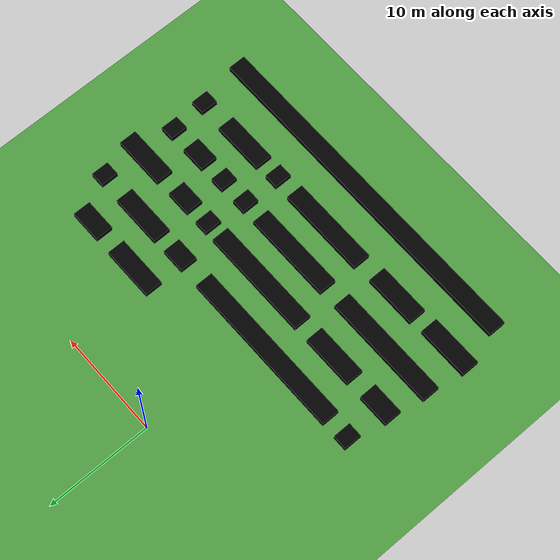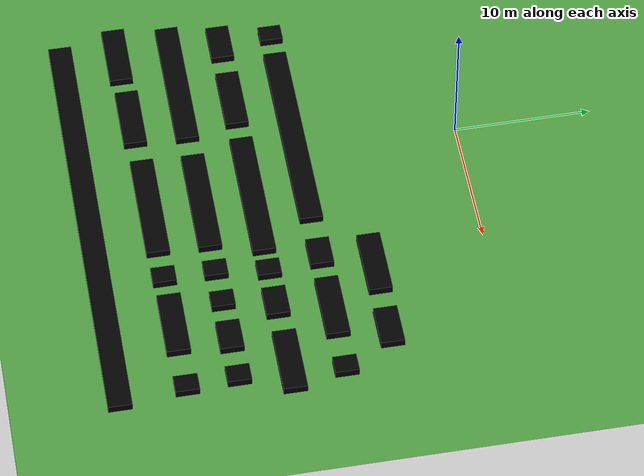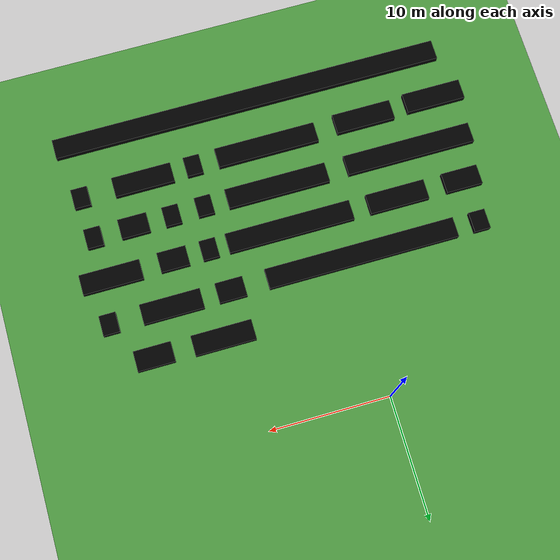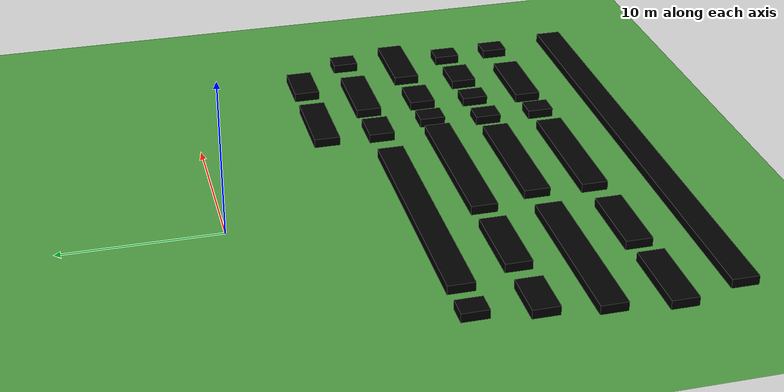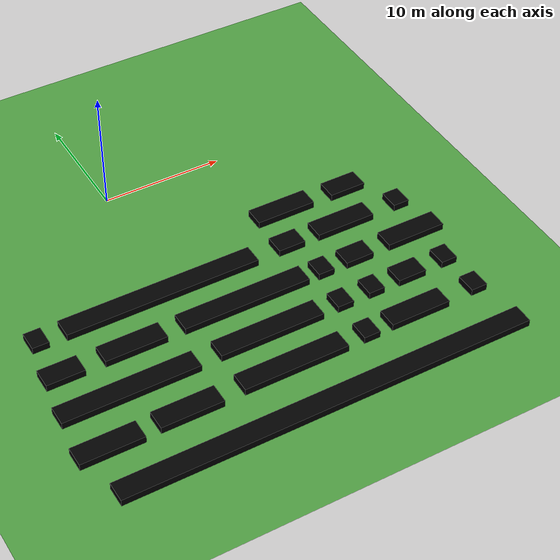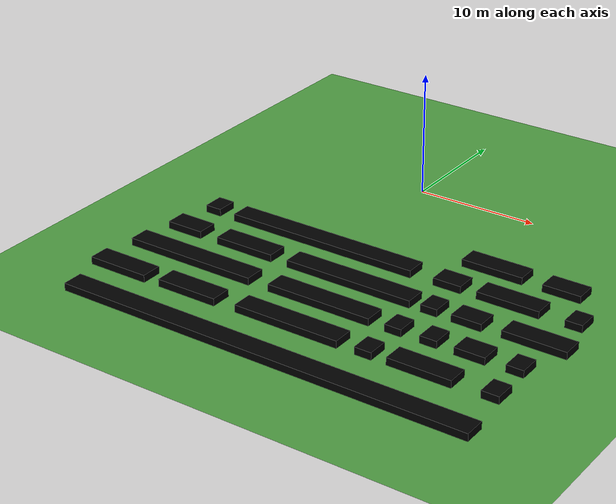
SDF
<sdf version="1.6">
 <world name="default">
  <model name="ground_plane">
   <static>1</static>
   <link name="link">
    <collision name="collision">
     <geometry><plane><normal>0 0 1</normal><size>120 120</size></plane></geometry>
     <surface><friction><ode><mu>100</mu><mu2>50</mu2></ode></friction></surface>
    </collision>
    <visual name="visual">
     <cast_shadows>0</cast_shadows>
     <geometry><plane><normal>0 0 1</normal><size>120 120</size></plane></geometry>
     <material>
      <script><uri>file://media/materials/scripts/gazebo.material</uri><name>Gazebo/Grass</name></script>
     </material>
    </visual>
   </link>
  </model>
  <model name="crop_01_8_clone">
   <link name="crop_01_0::link_0">
    <inertial>
     <mass>10.9148</mass>
     <inertia><ixx>13.7036</ixx><ixy>0</ixy><ixz>0</ixz><iyy>702.087</iyy><iyz>0</iyz><izz>715.772</izz></inertia>
    </inertial>
    <visual name="visual">
     <geometry><box><size>10.6183 1.68705 1</size></box></geometry>
     <material>
      <ambient>0 1 0 1</ambient>
      <diffuse>0 0 0 1</diffuse>
      <specular>0.1 0.1 0.1 1</specular>
      <emissive>0 0 0 0</emissive>
     </material>
    </visual>
    <collision name="collision">
     <geometry><box><size>10.6183 1.68705 1</size></box></geometry>
     <surface>
      <friction>
       <ode><mu>1</mu><mu2>1</mu2><fdir1>0 0 0</fdir1><slip1>0</slip1><slip2>0</slip2></ode>
       <torsional>
        <coefficient>1</coefficient>
        <patch_radius>0</patch_radius>
        <surface_radius>0</surface_radius>
        <use_patch_radius>1</use_patch_radius>
        <ode><slip>0</slip></ode>
       </torsional>
      </friction>
      <bounce><restitution_coefficient>0</restitution_coefficient><threshold>1e+06</threshold></bounce>
      <contact>
       <collide_without_contact>0</collide_without_contact>
       <collide_without_contact_bitmask>1</collide_without_contact_bitmask>
       <collide_bitmask>1</collide_bitmask>
       <ode>
        <soft_cfm>0</soft_cfm>
        <soft_erp>0.2</soft_erp>
        <kp>1e+13</kp>
        <kd>1</kd>
        <max_vel>0.01</max_vel>
        <min_depth>0</min_depth>
       </ode>
       <bullet>
        <split_impulse>1</split_impulse>
        <split_impulse_penetration_threshold>-0.01</split_impulse_penetration_threshold>
        <soft_cfm>0</soft_cfm>
        <soft_erp>0.2</soft_erp>
        <kp>1e+13</kp>
        <kd>1</kd>
       </bullet>
      </contact>
     </surface>
    </collision>
   </link>
   <static>1</static>
   <pose>3.79308 -15.5752 0.050638 0 -0 0</pose>
  </model>
  <model name="crop_01_8_clone_0_clone_0_clone_1_clone_clone_clone_clone_0_clone_1">
   <link name="crop_01_0::link_0">
    <inertial>
     <mass>10.9148</mass>
     <inertia><ixx>13.7036</ixx><ixy>0</ixy><ixz>0</ixz><iyy>702.087</iyy><iyz>0</iyz><izz>715.772</izz></inertia>
    </inertial>
    <visual name="visual">
     <geometry><box><size>8.63139 1.68705 1</size></box></geometry>
     <material>
      <ambient>0 1 0 1</ambient>
      <diffuse>0 0 0 1</diffuse>
      <specular>0.1 0.1 0.1 1</specular>
      <emissive>0 0 0 0</emissive>
     </material>
    </visual>
    <collision name="collision">
     <geometry><box><size>8.63139 1.68705 1</size></box></geometry>
     <surface>
      <friction>
       <ode><mu>1</mu><mu2>1</mu2><fdir1>0 0 0</fdir1><slip1>0</slip1><slip2>0</slip2></ode>
       <torsional>
        <coefficient>1</coefficient>
        <patch_radius>0</patch_radius>
        <surface_radius>0</surface_radius>
        <use_patch_radius>1</use_patch_radius>
        <ode><slip>0</slip></ode>
       </torsional>
      </friction>
      <bounce><restitution_coefficient>0</restitution_coefficient><threshold>1e+06</threshold></bounce>
      <contact>
       <collide_without_contact>0</collide_without_contact>
       <collide_without_contact_bitmask>1</collide_without_contact_bitmask>
       <collide_bitmask>1</collide_bitmask>
       <ode>
        <soft_cfm>0</soft_cfm>
        <soft_erp>0.2</soft_erp>
        <kp>1e+13</kp>
        <kd>1</kd>
        <max_vel>0.01</max_vel>
        <min_depth>0</min_depth>
       </ode>
       <bullet>
        <split_impulse>1</split_impulse>
        <split_impulse_penetration_threshold>-0.01</split_impulse_penetration_threshold>
        <soft_cfm>0</soft_cfm>
        <soft_erp>0.2</soft_erp>
        <kp>1e+13</kp>
        <kd>1</kd>
       </bullet>
      </contact>
     </surface>
    </collision>
   </link>
   <static>1</static>
   <pose>3.80036 -19.2787 0.050638 0 -0 0</pose>
  </model>
  <model name="crop_01_8_clone_0_clone_0_clone_1_clone_clone_clone_clone_clone_0_clone">
   <link name="crop_01_0::link_0">
    <inertial>
     <mass>10.9148</mass>
     <inertia><ixx>13.7036</ixx><ixy>0</ixy><ixz>0</ixz><iyy>702.087</iyy><iyz>0</iyz><izz>715.772</izz></inertia>
    </inertial>
    <visual name="visual">
     <geometry><box><size>3.0801 1.68705 1</size></box></geometry>
     <material>
      <ambient>0 1 0 1</ambient>
      <diffuse>0 0 0 1</diffuse>
      <specular>0.1 0.1 0.1 1</specular>
      <emissive>0 0 0 0</emissive>
     </material>
    </visual>
    <collision name="collision">
     <geometry><box><size>3.0801 1.68705 1</size></box></geometry>
     <surface>
      <friction>
       <ode><mu>1</mu><mu2>1</mu2><fdir1>0 0 0</fdir1><slip1>0</slip1><slip2>0</slip2></ode>
       <torsional>
        <coefficient>1</coefficient>
        <patch_radius>0</patch_radius>
        <surface_radius>0</surface_radius>
        <use_patch_radius>1</use_patch_radius>
        <ode><slip>0</slip></ode>
       </torsional>
      </friction>
      <bounce><restitution_coefficient>0</restitution_coefficient><threshold>1e+06</threshold></bounce>
      <contact>
       <collide_without_contact>0</collide_without_contact>
       <collide_without_contact_bitmask>1</collide_without_contact_bitmask>
       <collide_bitmask>1</collide_bitmask>
       <ode>
        <soft_cfm>0</soft_cfm>
        <soft_erp>0.2</soft_erp>
        <kp>1e+13</kp>
        <kd>1</kd>
        <max_vel>0.01</max_vel>
        <min_depth>0</min_depth>
       </ode>
       <bullet>
        <split_impulse>1</split_impulse>
        <split_impulse_penetration_threshold>-0.01</split_impulse_penetration_threshold>
        <soft_cfm>0</soft_cfm>
        <soft_erp>0.2</soft_erp>
        <kp>1e+13</kp>
        <kd>1</kd>
       </bullet>
      </contact>
     </surface>
    </collision>
   </link>
   <static>1</static>
   <pose>17.1699 -8.15216 0.050638 0 -0 0</pose>
  </model>
  <model name="crop_01_8_clone_0_clone_0_clone_1_clone_clone_clone_clone_0_clone_clone_3_clone">
   <link name="crop_01_0::link_0">
    <inertial>
     <mass>10.9148</mass>
     <inertia><ixx>13.7036</ixx><ixy>0</ixy><ixz>0</ixz><iyy>702.087</iyy><iyz>0</iyz><izz>715.772</izz></inertia>
    </inertial>
    <visual name="visual">
     <geometry><box><size>5.03328 1.68705 1</size></box></geometry>
     <material>
      <ambient>0 1 0 1</ambient>
      <diffuse>0 0 0 1</diffuse>
      <specular>0.1 0.1 0.1 1</specular>
      <emissive>0 0 0 0</emissive>
     </material>
    </visual>
    <collision name="collision">
     <geometry><box><size>5.03328 1.68705 1</size></box></geometry>
     <surface>
      <friction>
       <ode><mu>1</mu><mu2>1</mu2><fdir1>0 0 0</fdir1><slip1>0</slip1><slip2>0</slip2></ode>
       <torsional>
        <coefficient>1</coefficient>
        <patch_radius>0</patch_radius>
        <surface_radius>0</surface_radius>
        <use_patch_radius>1</use_patch_radius>
        <ode><slip>0</slip></ode>
       </torsional>
      </friction>
      <bounce><restitution_coefficient>0</restitution_coefficient><threshold>1e+06</threshold></bounce>
      <contact>
       <collide_without_contact>0</collide_without_contact>
       <collide_without_contact_bitmask>1</collide_without_contact_bitmask>
       <collide_bitmask>1</collide_bitmask>
       <ode>
        <soft_cfm>0</soft_cfm>
        <soft_erp>0.2</soft_erp>
        <kp>1e+13</kp>
        <kd>1</kd>
        <max_vel>0.01</max_vel>
        <min_depth>0</min_depth>
       </ode>
       <bullet>
        <split_impulse>1</split_impulse>
        <split_impulse_penetration_threshold>-0.01</split_impulse_penetration_threshold>
        <soft_cfm>0</soft_cfm>
        <soft_erp>0.2</soft_erp>
        <kp>1e+13</kp>
        <kd>1</kd>
       </bullet>
      </contact>
     </surface>
    </collision>
   </link>
   <static>1</static>
   <pose>11.4663 -8.12033 0.050638 0 -0 0</pose>
  </model>
  <model name="crop_01_8_clone_0_clone_0_clone_1_clone_clone_clone_clone_clone_clone_1_clone_clone_clone_clone">
   <link name="crop_01_0::link_0">
    <inertial>
     <mass>10.9148</mass>
     <inertia><ixx>13.7036</ixx><ixy>0</ixy><ixz>0</ixz><iyy>702.087</iyy><iyz>0</iyz><izz>715.772</izz></inertia>
    </inertial>
    <visual name="visual">
     <geometry><box><size>1.36286 1.68705 1</size></box></geometry>
     <material>
      <ambient>0 1 0 1</ambient>
      <diffuse>0 0 0 1</diffuse>
      <specular>0.1 0.1 0.1 1</specular>
      <emissive>0 0 0 0</emissive>
     </material>
    </visual>
    <collision name="collision">
     <geometry><box><size>1.36286 1.68705 1</size></box></geometry>
     <surface>
      <friction>
       <ode><mu>1</mu><mu2>1</mu2><fdir1>0 0 0</fdir1><slip1>0</slip1><slip2>0</slip2></ode>
       <torsional>
        <coefficient>1</coefficient>
        <patch_radius>0</patch_radius>
        <surface_radius>0</surface_radius>
        <use_patch_radius>1</use_patch_radius>
        <ode><slip>0</slip></ode>
       </torsional>
      </friction>
      <bounce><restitution_coefficient>0</restitution_coefficient><threshold>1e+06</threshold></bounce>
      <contact>
       <collide_without_contact>0</collide_without_contact>
       <collide_without_contact_bitmask>1</collide_without_contact_bitmask>
       <collide_bitmask>1</collide_bitmask>
       <ode>
        <soft_cfm>0</soft_cfm>
        <soft_erp>0.2</soft_erp>
        <kp>1e+13</kp>
        <kd>1</kd>
        <max_vel>0.01</max_vel>
        <min_depth>0</min_depth>
       </ode>
       <bullet>
        <split_impulse>1</split_impulse>
        <split_impulse_penetration_threshold>-0.01</split_impulse_penetration_threshold>
        <soft_cfm>0</soft_cfm>
        <soft_erp>0.2</soft_erp>
        <kp>1e+13</kp>
        <kd>1</kd>
       </bullet>
      </contact>
     </surface>
    </collision>
   </link>
   <static>1</static>
   <pose>-11.3392 -11.7885 0.050638 0 -0 0</pose>
  </model>
  <model name="crop_01_8_clone_0_clone_clone">
   <link name="crop_01_0::link_0">
    <inertial>
     <mass>10.9148</mass>
     <inertia><ixx>13.7036</ixx><ixy>0</ixy><ixz>0</ixz><iyy>702.087</iyy><iyz>0</iyz><izz>715.772</izz></inertia>
    </inertial>
    <visual name="visual">
     <geometry><box><size>16.0862 1.68705 1</size></box></geometry>
     <material>
      <ambient>0 1 0 1</ambient>
      <diffuse>0 0 0 1</diffuse>
      <specular>0.1 0.1 0.1 1</specular>
      <emissive>0 0 0 0</emissive>
     </material>
    </visual>
    <collision name="collision">
     <geometry><box><size>16.0862 1.68705 1</size></box></geometry>
     <surface>
      <friction>
       <ode><mu>1</mu><mu2>1</mu2><fdir1>0 0 0</fdir1><slip1>0</slip1><slip2>0</slip2></ode>
       <torsional>
        <coefficient>1</coefficient>
        <patch_radius>0</patch_radius>
        <surface_radius>0</surface_radius>
        <use_patch_radius>1</use_patch_radius>
        <ode><slip>0</slip></ode>
       </torsional>
      </friction>
      <bounce><restitution_coefficient>0</restitution_coefficient><threshold>1e+06</threshold></bounce>
      <contact>
       <collide_without_contact>0</collide_without_contact>
       <collide_without_contact_bitmask>1</collide_without_contact_bitmask>
       <collide_bitmask>1</collide_bitmask>
       <ode>
        <soft_cfm>0</soft_cfm>
        <soft_erp>0.2</soft_erp>
        <kp>1e+13</kp>
        <kd>1</kd>
        <max_vel>0.01</max_vel>
        <min_depth>0</min_depth>
       </ode>
       <bullet>
        <split_impulse>1</split_impulse>
        <split_impulse_penetration_threshold>-0.01</split_impulse_penetration_threshold>
        <soft_cfm>0</soft_cfm>
        <soft_erp>0.2</soft_erp>
        <kp>1e+13</kp>
        <kd>1</kd>
       </bullet>
      </contact>
     </surface>
    </collision>
   </link>
   <static>1</static>
   <pose>-1.24172 -11.8057 0.050638 0 -0 0</pose>
  </model>
  <model name="crop_01_8_clone_0_clone_0_clone_1_clone_clone_clone_clone_0_clone_clone_0_clone_0_clone_0">
   <link name="crop_01_0::link_0">
    <inertial>
     <mass>10.9148</mass>
     <inertia><ixx>13.7036</ixx><ixy>0</ixy><ixz>0</ixz><iyy>702.087</iyy><iyz>0</iyz><izz>715.772</izz></inertia>
    </inertial>
    <visual name="visual">
     <geometry><box><size>2.29963 1.68705 1</size></box></geometry>
     <material>
      <ambient>0 1 0 1</ambient>
      <diffuse>0 0 0 1</diffuse>
      <specular>0.1 0.1 0.1 1</specular>
      <emissive>0 0 0 0</emissive>
     </material>
    </visual>
    <collision name="collision">
     <geometry><box><size>2.29963 1.68705 1</size></box></geometry>
     <surface>
      <friction>
       <ode><mu>1</mu><mu2>1</mu2><fdir1>0 0 0</fdir1><slip1>0</slip1><slip2>0</slip2></ode>
       <torsional>
        <coefficient>1</coefficient>
        <patch_radius>0</patch_radius>
        <surface_radius>0</surface_radius>
        <use_patch_radius>1</use_patch_radius>
        <ode><slip>0</slip></ode>
       </torsional>
      </friction>
      <bounce><restitution_coefficient>0</restitution_coefficient><threshold>1e+06</threshold></bounce>
      <contact>
       <collide_without_contact>0</collide_without_contact>
       <collide_without_contact_bitmask>1</collide_without_contact_bitmask>
       <collide_bitmask>1</collide_bitmask>
       <ode>
        <soft_cfm>0</soft_cfm>
        <soft_erp>0.2</soft_erp>
        <kp>1e+13</kp>
        <kd>1</kd>
        <max_vel>0.01</max_vel>
        <min_depth>0</min_depth>
       </ode>
       <bullet>
        <split_impulse>1</split_impulse>
        <split_impulse_penetration_threshold>-0.01</split_impulse_penetration_threshold>
        <soft_cfm>0</soft_cfm>
        <soft_erp>0.2</soft_erp>
        <kp>1e+13</kp>
        <kd>1</kd>
       </bullet>
      </contact>
     </surface>
    </collision>
   </link>
   <static>1</static>
   <pose>9.85292 -11.7569 0.050638 0 -0 0</pose>
  </model>
  <model name="crop_01_8_clone_0_clone_0_clone_1_clone_clone_clone_clone_0_clone_clone_3_clone_0_clone">
   <link name="crop_01_0::link_0">
    <inertial>
     <mass>10.9148</mass>
     <inertia><ixx>13.7036</ixx><ixy>0</ixy><ixz>0</ixz><iyy>702.087</iyy><iyz>0</iyz><izz>715.772</izz></inertia>
    </inertial>
    <visual name="visual">
     <geometry><box><size>5.03328 1.68705 1</size></box></geometry>
     <material>
      <ambient>0 1 0 1</ambient>
      <diffuse>0 0 0 1</diffuse>
      <specular>0.1 0.1 0.1 1</specular>
      <emissive>0 0 0 0</emissive>
     </material>
    </visual>
    <collision name="collision">
     <geometry><box><size>5.03328 1.68705 1</size></box></geometry>
     <surface>
      <friction>
       <ode><mu>1</mu><mu2>1</mu2><fdir1>0 0 0</fdir1><slip1>0</slip1><slip2>0</slip2></ode>
       <torsional>
        <coefficient>1</coefficient>
        <patch_radius>0</patch_radius>
        <surface_radius>0</surface_radius>
        <use_patch_radius>1</use_patch_radius>
        <ode><slip>0</slip></ode>
       </torsional>
      </friction>
      <bounce><restitution_coefficient>0</restitution_coefficient><threshold>1e+06</threshold></bounce>
      <contact>
       <collide_without_contact>0</collide_without_contact>
       <collide_without_contact_bitmask>1</collide_without_contact_bitmask>
       <collide_bitmask>1</collide_bitmask>
       <ode>
        <soft_cfm>0</soft_cfm>
        <soft_erp>0.2</soft_erp>
        <kp>1e+13</kp>
        <kd>1</kd>
        <max_vel>0.01</max_vel>
        <min_depth>0</min_depth>
       </ode>
       <bullet>
        <split_impulse>1</split_impulse>
        <split_impulse_penetration_threshold>-0.01</split_impulse_penetration_threshold>
        <soft_cfm>0</soft_cfm>
        <soft_erp>0.2</soft_erp>
        <kp>1e+13</kp>
        <kd>1</kd>
       </bullet>
      </contact>
     </surface>
    </collision>
   </link>
   <static>1</static>
   <pose>14.7856 -11.7264 0.050638 0 -0 0</pose>
  </model>
  <model name="crop_01_8_clone_0_clone_0_clone_1_clone_clone_clone_clone_clone_clone_1_clone_clone_0_clone">
   <link name="crop_01_0::link_0">
    <inertial>
     <mass>10.9148</mass>
     <inertia><ixx>13.7036</ixx><ixy>0</ixy><ixz>0</ixz><iyy>702.087</iyy><iyz>0</iyz><izz>715.772</izz></inertia>
    </inertial>
    <visual name="visual">
     <geometry><box><size>1.36286 1.68705 1</size></box></geometry>
     <material>
      <ambient>0 1 0 1</ambient>
      <diffuse>0 0 0 1</diffuse>
      <specular>0.1 0.1 0.1 1</specular>
      <emissive>0 0 0 0</emissive>
     </material>
    </visual>
    <collision name="collision">
     <geometry><box><size>1.36286 1.68705 1</size></box></geometry>
     <surface>
      <friction>
       <ode><mu>1</mu><mu2>1</mu2><fdir1>0 0 0</fdir1><slip1>0</slip1><slip2>0</slip2></ode>
       <torsional>
        <coefficient>1</coefficient>
        <patch_radius>0</patch_radius>
        <surface_radius>0</surface_radius>
        <use_patch_radius>1</use_patch_radius>
        <ode><slip>0</slip></ode>
       </torsional>
      </friction>
      <bounce><restitution_coefficient>0</restitution_coefficient><threshold>1e+06</threshold></bounce>
      <contact>
       <collide_without_contact>0</collide_without_contact>
       <collide_without_contact_bitmask>1</collide_without_contact_bitmask>
       <collide_bitmask>1</collide_bitmask>
       <ode>
        <soft_cfm>0</soft_cfm>
        <soft_erp>0.2</soft_erp>
        <kp>1e+13</kp>
        <kd>1</kd>
        <max_vel>0.01</max_vel>
        <min_depth>0</min_depth>
       </ode>
       <bullet>
        <split_impulse>1</split_impulse>
        <split_impulse_penetration_threshold>-0.01</split_impulse_penetration_threshold>
        <soft_cfm>0</soft_cfm>
        <soft_erp>0.2</soft_erp>
        <kp>1e+13</kp>
        <kd>1</kd>
       </bullet>
      </contact>
     </surface>
    </collision>
   </link>
   <static>1</static>
   <pose>19.976 -11.6984 0.050638 0 -0 0</pose>
  </model>
  <model name="crop_01_8_clone_0_clone_0_clone_1_clone_clone_clone_clone_clone_clone_1_clone_clone_0_clone_0">
   <link name="crop_01_0::link_0">
    <inertial>
     <mass>10.9148</mass>
     <inertia><ixx>13.7036</ixx><ixy>0</ixy><ixz>0</ixz><iyy>702.087</iyy><iyz>0</iyz><izz>715.772</izz></inertia>
    </inertial>
    <visual name="visual">
     <geometry><box><size>1.36286 1.68705 1</size></box></geometry>
     <material>
      <ambient>0 1 0 1</ambient>
      <diffuse>0 0 0 1</diffuse>
      <specular>0.1 0.1 0.1 1</specular>
      <emissive>0 0 0 0</emissive>
     </material>
    </visual>
    <collision name="collision">
     <geometry><box><size>1.36286 1.68705 1</size></box></geometry>
     <surface>
      <friction>
       <ode><mu>1</mu><mu2>1</mu2><fdir1>0 0 0</fdir1><slip1>0</slip1><slip2>0</slip2></ode>
       <torsional>
        <coefficient>1</coefficient>
        <patch_radius>0</patch_radius>
        <surface_radius>0</surface_radius>
        <use_patch_radius>1</use_patch_radius>
        <ode><slip>0</slip></ode>
       </torsional>
      </friction>
      <bounce><restitution_coefficient>0</restitution_coefficient><threshold>1e+06</threshold></bounce>
      <contact>
       <collide_without_contact>0</collide_without_contact>
       <collide_without_contact_bitmask>1</collide_without_contact_bitmask>
       <collide_bitmask>1</collide_bitmask>
       <ode>
        <soft_cfm>0</soft_cfm>
        <soft_erp>0.2</soft_erp>
        <kp>1e+13</kp>
        <kd>1</kd>
        <max_vel>0.01</max_vel>
        <min_depth>0</min_depth>
       </ode>
       <bullet>
        <split_impulse>1</split_impulse>
        <split_impulse_penetration_threshold>-0.01</split_impulse_penetration_threshold>
        <soft_cfm>0</soft_cfm>
        <soft_erp>0.2</soft_erp>
        <kp>1e+13</kp>
        <kd>1</kd>
       </bullet>
      </contact>
     </surface>
    </collision>
   </link>
   <static>1</static>
   <pose>10.6547 -15.5379 0.050638 0 -0 0</pose>
  </model>
  <model name="crop_01_8_clone_0_clone_0_clone_0_clone">
   <link name="crop_01_0::link_0">
    <inertial>
     <mass>10.9148</mass>
     <inertia><ixx>13.7036</ixx><ixy>0</ixy><ixz>0</ixz><iyy>702.087</iyy><iyz>0</iyz><izz>715.772</izz></inertia>
    </inertial>
    <visual name="visual">
     <geometry><box><size>2.4115 1.68705 1</size></box></geometry>
     <material>
      <ambient>0 1 0 1</ambient>
      <diffuse>0 0 0 1</diffuse>
      <specular>0.1 0.1 0.1 1</specular>
      <emissive>0 0 0 0</emissive>
     </material>
    </visual>
    <collision name="collision">
     <geometry><box><size>2.4115 1.68705 1</size></box></geometry>
     <surface>
      <friction>
       <ode><mu>1</mu><mu2>1</mu2><fdir1>0 0 0</fdir1><slip1>0</slip1><slip2>0</slip2></ode>
       <torsional>
        <coefficient>1</coefficient>
        <patch_radius>0</patch_radius>
        <surface_radius>0</surface_radius>
        <use_patch_radius>1</use_patch_radius>
        <ode><slip>0</slip></ode>
       </torsional>
      </friction>
      <bounce><restitution_coefficient>0</restitution_coefficient><threshold>1e+06</threshold></bounce>
      <contact>
       <collide_without_contact>0</collide_without_contact>
       <collide_without_contact_bitmask>1</collide_without_contact_bitmask>
       <collide_bitmask>1</collide_bitmask>
       <ode>
        <soft_cfm>0</soft_cfm>
        <soft_erp>0.2</soft_erp>
        <kp>1e+13</kp>
        <kd>1</kd>
        <max_vel>0.01</max_vel>
        <min_depth>0</min_depth>
       </ode>
       <bullet>
        <split_impulse>1</split_impulse>
        <split_impulse_penetration_threshold>-0.01</split_impulse_penetration_threshold>
        <soft_cfm>0</soft_cfm>
        <soft_erp>0.2</soft_erp>
        <kp>1e+13</kp>
        <kd>1</kd>
       </bullet>
      </contact>
     </surface>
    </collision>
   </link>
   <static>1</static>
   <pose>13.6802 -15.521 0.050638 0 -0 0</pose>
  </model>
  <model name="crop_01_8_clone_0_clone_0_clone_1_clone_clone_clone_clone_0_clone_clone_3_clone_clone">
   <link name="crop_01_0::link_0">
    <inertial>
     <mass>10.9148</mass>
     <inertia><ixx>13.7036</ixx><ixy>0</ixy><ixz>0</ixz><iyy>702.087</iyy><iyz>0</iyz><izz>715.772</izz></inertia>
    </inertial>
    <visual name="visual">
     <geometry><box><size>5.03328 1.68705 1</size></box></geometry>
     <material>
      <ambient>0 1 0 1</ambient>
      <diffuse>0 0 0 1</diffuse>
      <specular>0.1 0.1 0.1 1</specular>
      <emissive>0 0 0 0</emissive>
     </material>
    </visual>
    <collision name="collision">
     <geometry><box><size>5.03328 1.68705 1</size></box></geometry>
     <surface>
      <friction>
       <ode><mu>1</mu><mu2>1</mu2><fdir1>0 0 0</fdir1><slip1>0</slip1><slip2>0</slip2></ode>
       <torsional>
        <coefficient>1</coefficient>
        <patch_radius>0</patch_radius>
        <surface_radius>0</surface_radius>
        <use_patch_radius>1</use_patch_radius>
        <ode><slip>0</slip></ode>
       </torsional>
      </friction>
      <bounce><restitution_coefficient>0</restitution_coefficient><threshold>1e+06</threshold></bounce>
      <contact>
       <collide_without_contact>0</collide_without_contact>
       <collide_without_contact_bitmask>1</collide_without_contact_bitmask>
       <collide_bitmask>1</collide_bitmask>
       <ode>
        <soft_cfm>0</soft_cfm>
        <soft_erp>0.2</soft_erp>
        <kp>1e+13</kp>
        <kd>1</kd>
        <max_vel>0.01</max_vel>
        <min_depth>0</min_depth>
       </ode>
       <bullet>
        <split_impulse>1</split_impulse>
        <split_impulse_penetration_threshold>-0.01</split_impulse_penetration_threshold>
        <soft_cfm>0</soft_cfm>
        <soft_erp>0.2</soft_erp>
        <kp>1e+13</kp>
        <kd>1</kd>
       </bullet>
      </contact>
     </surface>
    </collision>
   </link>
   <static>1</static>
   <pose>18.9086 -15.4259 0.050638 0 -0 0</pose>
  </model>
  <model name="crop_01_8_clone_0_clone_0_clone_1_clone_clone_clone_clone_0_clone_clone_3_clone_1_clone">
   <link name="crop_01_0::link_0">
    <inertial>
     <mass>10.9148</mass>
     <inertia><ixx>13.7036</ixx><ixy>0</ixy><ixz>0</ixz><iyy>702.087</iyy><iyz>0</iyz><izz>715.772</izz></inertia>
    </inertial>
    <visual name="visual">
     <geometry><box><size>5.03328 1.68705 1</size></box></geometry>
     <material>
      <ambient>0 1 0 1</ambient>
      <diffuse>0 0 0 1</diffuse>
      <specular>0.1 0.1 0.1 1</specular>
      <emissive>0 0 0 0</emissive>
     </material>
    </visual>
    <collision name="collision">
     <geometry><box><size>5.03328 1.68705 1</size></box></geometry>
     <surface>
      <friction>
       <ode><mu>1</mu><mu2>1</mu2><fdir1>0 0 0</fdir1><slip1>0</slip1><slip2>0</slip2></ode>
       <torsional>
        <coefficient>1</coefficient>
        <patch_radius>0</patch_radius>
        <surface_radius>0</surface_radius>
        <use_patch_radius>1</use_patch_radius>
        <ode><slip>0</slip></ode>
       </torsional>
      </friction>
      <bounce><restitution_coefficient>0</restitution_coefficient><threshold>1e+06</threshold></bounce>
      <contact>
       <collide_without_contact>0</collide_without_contact>
       <collide_without_contact_bitmask>1</collide_without_contact_bitmask>
       <collide_bitmask>1</collide_bitmask>
       <ode>
        <soft_cfm>0</soft_cfm>
        <soft_erp>0.2</soft_erp>
        <kp>1e+13</kp>
        <kd>1</kd>
        <max_vel>0.01</max_vel>
        <min_depth>0</min_depth>
       </ode>
       <bullet>
        <split_impulse>1</split_impulse>
        <split_impulse_penetration_threshold>-0.01</split_impulse_penetration_threshold>
        <soft_cfm>0</soft_cfm>
        <soft_erp>0.2</soft_erp>
        <kp>1e+13</kp>
        <kd>1</kd>
       </bullet>
      </contact>
     </surface>
    </collision>
   </link>
   <static>1</static>
   <pose>-5.46828 -15.604 0.050638 0 -0 0</pose>
  </model>
  <model name="crop_01_8_clone_0_clone_0_clone_1_clone_clone_clone_clone_clone_2_clone_0">
   <link name="crop_01_0::link_0">
    <inertial>
     <mass>10.9148</mass>
     <inertia><ixx>13.7036</ixx><ixy>0</ixy><ixz>0</ixz><iyy>702.087</iyy><iyz>0</iyz><izz>715.772</izz></inertia>
    </inertial>
    <visual name="visual">
     <geometry><box><size>3.0801 1.68705 1</size></box></geometry>
     <material>
      <ambient>0 1 0 1</ambient>
      <diffuse>0 0 0 1</diffuse>
      <specular>0.1 0.1 0.1 1</specular>
      <emissive>0 0 0 0</emissive>
     </material>
    </visual>
    <collision name="collision">
     <geometry><box><size>3.0801 1.68705 1</size></box></geometry>
     <surface>
      <friction>
       <ode><mu>1</mu><mu2>1</mu2><fdir1>0 0 0</fdir1><slip1>0</slip1><slip2>0</slip2></ode>
       <torsional>
        <coefficient>1</coefficient>
        <patch_radius>0</patch_radius>
        <surface_radius>0</surface_radius>
        <use_patch_radius>1</use_patch_radius>
        <ode><slip>0</slip></ode>
       </torsional>
      </friction>
      <bounce><restitution_coefficient>0</restitution_coefficient><threshold>1e+06</threshold></bounce>
      <contact>
       <collide_without_contact>0</collide_without_contact>
       <collide_without_contact_bitmask>1</collide_without_contact_bitmask>
       <collide_bitmask>1</collide_bitmask>
       <ode>
        <soft_cfm>0</soft_cfm>
        <soft_erp>0.2</soft_erp>
        <kp>1e+13</kp>
        <kd>1</kd>
        <max_vel>0.01</max_vel>
        <min_depth>0</min_depth>
       </ode>
       <bullet>
        <split_impulse>1</split_impulse>
        <split_impulse_penetration_threshold>-0.01</split_impulse_penetration_threshold>
        <soft_cfm>0</soft_cfm>
        <soft_erp>0.2</soft_erp>
        <kp>1e+13</kp>
        <kd>1</kd>
       </bullet>
      </contact>
     </surface>
    </collision>
   </link>
   <static>1</static>
   <pose>-11.0961 -15.6347 0.050638 0 -0 0</pose>
  </model>
  <model name="crop_01_8_clone_0_clone_0_clone_1_clone_clone_0">
   <link name="crop_01_0::link_0">
    <inertial>
     <mass>10.9148</mass>
     <inertia><ixx>13.7036</ixx><ixy>0</ixy><ixz>0</ixz><iyy>702.087</iyy><iyz>0</iyz><izz>715.772</izz></inertia>
    </inertial>
    <visual name="visual">
     <geometry><box><size>10.9749 1.68705 1</size></box></geometry>
     <material>
      <ambient>0 1 0 1</ambient>
      <diffuse>0 0 0 1</diffuse>
      <specular>0.1 0.1 0.1 1</specular>
      <emissive>0 0 0 0</emissive>
     </material>
    </visual>
    <collision name="collision">
     <geometry><box><size>10.9749 1.68705 1</size></box></geometry>
     <surface>
      <friction>
       <ode><mu>1</mu><mu2>1</mu2><fdir1>0 0 0</fdir1><slip1>0</slip1><slip2>0</slip2></ode>
       <torsional>
        <coefficient>1</coefficient>
        <patch_radius>0</patch_radius>
        <surface_radius>0</surface_radius>
        <use_patch_radius>1</use_patch_radius>
        <ode><slip>0</slip></ode>
       </torsional>
      </friction>
      <bounce><restitution_coefficient>0</restitution_coefficient><threshold>1e+06</threshold></bounce>
      <contact>
       <collide_without_contact>0</collide_without_contact>
       <collide_without_contact_bitmask>1</collide_without_contact_bitmask>
       <collide_bitmask>1</collide_bitmask>
       <ode>
        <soft_cfm>0</soft_cfm>
        <soft_erp>0.2</soft_erp>
        <kp>1e+13</kp>
        <kd>1</kd>
        <max_vel>0.01</max_vel>
        <min_depth>0</min_depth>
       </ode>
       <bullet>
        <split_impulse>1</split_impulse>
        <split_impulse_penetration_threshold>-0.01</split_impulse_penetration_threshold>
        <soft_cfm>0</soft_cfm>
        <soft_erp>0.2</soft_erp>
        <kp>1e+13</kp>
        <kd>1</kd>
       </bullet>
      </contact>
     </surface>
    </collision>
   </link>
   <static>1</static>
   <pose>-7.66989 -19.3779 0.050638 0 -0 0</pose>
  </model>
  <model name="crop_01_8_clone_0_clone_0_clone_1_clone_clone_clone_clone_clone_clone_1_clone_clone_clone_clone_0">
   <link name="crop_01_0::link_0">
    <inertial>
     <mass>10.9148</mass>
     <inertia><ixx>13.7036</ixx><ixy>0</ixy><ixz>0</ixz><iyy>702.087</iyy><iyz>0</iyz><izz>715.772</izz></inertia>
    </inertial>
    <visual name="visual">
     <geometry><box><size>1.36286 1.68705 1</size></box></geometry>
     <material>
      <ambient>0 1 0 1</ambient>
      <diffuse>0 0 0 1</diffuse>
      <specular>0.1 0.1 0.1 1</specular>
      <emissive>0 0 0 0</emissive>
     </material>
    </visual>
    <collision name="collision">
     <geometry><box><size>1.36286 1.68705 1</size></box></geometry>
     <surface>
      <friction>
       <ode><mu>1</mu><mu2>1</mu2><fdir1>0 0 0</fdir1><slip1>0</slip1><slip2>0</slip2></ode>
       <torsional>
        <coefficient>1</coefficient>
        <patch_radius>0</patch_radius>
        <surface_radius>0</surface_radius>
        <use_patch_radius>1</use_patch_radius>
        <ode><slip>0</slip></ode>
       </torsional>
      </friction>
      <bounce><restitution_coefficient>0</restitution_coefficient><threshold>1e+06</threshold></bounce>
      <contact>
       <collide_without_contact>0</collide_without_contact>
       <collide_without_contact_bitmask>1</collide_without_contact_bitmask>
       <collide_bitmask>1</collide_bitmask>
       <ode>
        <soft_cfm>0</soft_cfm>
        <soft_erp>0.2</soft_erp>
        <kp>1e+13</kp>
        <kd>1</kd>
        <max_vel>0.01</max_vel>
        <min_depth>0</min_depth>
       </ode>
       <bullet>
        <split_impulse>1</split_impulse>
        <split_impulse_penetration_threshold>-0.01</split_impulse_penetration_threshold>
        <soft_cfm>0</soft_cfm>
        <soft_erp>0.2</soft_erp>
        <kp>1e+13</kp>
        <kd>1</kd>
       </bullet>
      </contact>
     </surface>
    </collision>
   </link>
   <static>1</static>
   <pose>10.0656 -19.2402 0.050638 0 -0 0</pose>
  </model>
  <model name="crop_01_8_clone_0_clone_0_clone_1_clone_clone_clone_clone_clone_clone_1_clone_clone_0_clone_0_clone">
   <link name="crop_01_0::link_0">
    <inertial>
     <mass>10.9148</mass>
     <inertia><ixx>13.7036</ixx><ixy>0</ixy><ixz>0</ixz><iyy>702.087</iyy><iyz>0</iyz><izz>715.772</izz></inertia>
    </inertial>
    <visual name="visual">
     <geometry><box><size>1.36286 1.68705 1</size></box></geometry>
     <material>
      <ambient>0 1 0 1</ambient>
      <diffuse>0 0 0 1</diffuse>
      <specular>0.1 0.1 0.1 1</specular>
      <emissive>0 0 0 0</emissive>
     </material>
    </visual>
    <collision name="collision">
     <geometry><box><size>1.36286 1.68705 1</size></box></geometry>
     <surface>
      <friction>
       <ode><mu>1</mu><mu2>1</mu2><fdir1>0 0 0</fdir1><slip1>0</slip1><slip2>0</slip2></ode>
       <torsional>
        <coefficient>1</coefficient>
        <patch_radius>0</patch_radius>
        <surface_radius>0</surface_radius>
        <use_patch_radius>1</use_patch_radius>
        <ode><slip>0</slip></ode>
       </torsional>
      </friction>
      <bounce><restitution_coefficient>0</restitution_coefficient><threshold>1e+06</threshold></bounce>
      <contact>
       <collide_without_contact>0</collide_without_contact>
       <collide_without_contact_bitmask>1</collide_without_contact_bitmask>
       <collide_bitmask>1</collide_bitmask>
       <ode>
        <soft_cfm>0</soft_cfm>
        <soft_erp>0.2</soft_erp>
        <kp>1e+13</kp>
        <kd>1</kd>
        <max_vel>0.01</max_vel>
        <min_depth>0</min_depth>
       </ode>
       <bullet>
        <split_impulse>1</split_impulse>
        <split_impulse_penetration_threshold>-0.01</split_impulse_penetration_threshold>
        <soft_cfm>0</soft_cfm>
        <soft_erp>0.2</soft_erp>
        <kp>1e+13</kp>
        <kd>1</kd>
       </bullet>
      </contact>
     </surface>
    </collision>
   </link>
   <static>1</static>
   <pose>12.8602 -19.1687 0.050638 0 -0 0</pose>
  </model>
  <model name="crop_01_8_clone_0_clone_0_clone_0_clone_clone">
   <link name="crop_01_0::link_0">
    <inertial>
     <mass>10.9148</mass>
     <inertia><ixx>13.7036</ixx><ixy>0</ixy><ixz>0</ixz><iyy>702.087</iyy><iyz>0</iyz><izz>715.772</izz></inertia>
    </inertial>
    <visual name="visual">
     <geometry><box><size>2.4115 1.68705 1</size></box></geometry>
     <material>
      <ambient>0 1 0 1</ambient>
      <diffuse>0 0 0 1</diffuse>
      <specular>0.1 0.1 0.1 1</specular>
      <emissive>0 0 0 0</emissive>
     </material>
    </visual>
    <collision name="collision">
     <geometry><box><size>2.4115 1.68705 1</size></box></geometry>
     <surface>
      <friction>
       <ode><mu>1</mu><mu2>1</mu2><fdir1>0 0 0</fdir1><slip1>0</slip1><slip2>0</slip2></ode>
       <torsional>
        <coefficient>1</coefficient>
        <patch_radius>0</patch_radius>
        <surface_radius>0</surface_radius>
        <use_patch_radius>1</use_patch_radius>
        <ode><slip>0</slip></ode>
       </torsional>
      </friction>
      <bounce><restitution_coefficient>0</restitution_coefficient><threshold>1e+06</threshold></bounce>
      <contact>
       <collide_without_contact>0</collide_without_contact>
       <collide_without_contact_bitmask>1</collide_without_contact_bitmask>
       <collide_bitmask>1</collide_bitmask>
       <ode>
        <soft_cfm>0</soft_cfm>
        <soft_erp>0.2</soft_erp>
        <kp>1e+13</kp>
        <kd>1</kd>
        <max_vel>0.01</max_vel>
        <min_depth>0</min_depth>
       </ode>
       <bullet>
        <split_impulse>1</split_impulse>
        <split_impulse_penetration_threshold>-0.01</split_impulse_penetration_threshold>
        <soft_cfm>0</soft_cfm>
        <soft_erp>0.2</soft_erp>
        <kp>1e+13</kp>
        <kd>1</kd>
       </bullet>
      </contact>
     </surface>
    </collision>
   </link>
   <static>1</static>
   <pose>16.0721 -19.1523 0.050638 0 -0 0</pose>
  </model>
  <model name="crop_01_8_clone_0_clone_0_clone_1_clone_clone_clone_clone_clone_clone_1_clone_clone_0_clone_clone">
   <link name="crop_01_0::link_0">
    <inertial>
     <mass>10.9148</mass>
     <inertia><ixx>13.7036</ixx><ixy>0</ixy><ixz>0</ixz><iyy>702.087</iyy><iyz>0</iyz><izz>715.772</izz></inertia>
    </inertial>
    <visual name="visual">
     <geometry><box><size>1.36286 1.68705 1</size></box></geometry>
     <material>
      <ambient>0 1 0 1</ambient>
      <diffuse>0 0 0 1</diffuse>
      <specular>0.1 0.1 0.1 1</specular>
      <emissive>0 0 0 0</emissive>
     </material>
    </visual>
    <collision name="collision">
     <geometry><box><size>1.36286 1.68705 1</size></box></geometry>
     <surface>
      <friction>
       <ode><mu>1</mu><mu2>1</mu2><fdir1>0 0 0</fdir1><slip1>0</slip1><slip2>0</slip2></ode>
       <torsional>
        <coefficient>1</coefficient>
        <patch_radius>0</patch_radius>
        <surface_radius>0</surface_radius>
        <use_patch_radius>1</use_patch_radius>
        <ode><slip>0</slip></ode>
       </torsional>
      </friction>
      <bounce><restitution_coefficient>0</restitution_coefficient><threshold>1e+06</threshold></bounce>
      <contact>
       <collide_without_contact>0</collide_without_contact>
       <collide_without_contact_bitmask>1</collide_without_contact_bitmask>
       <collide_bitmask>1</collide_bitmask>
       <ode>
        <soft_cfm>0</soft_cfm>
        <soft_erp>0.2</soft_erp>
        <kp>1e+13</kp>
        <kd>1</kd>
        <max_vel>0.01</max_vel>
        <min_depth>0</min_depth>
       </ode>
       <bullet>
        <split_impulse>1</split_impulse>
        <split_impulse_penetration_threshold>-0.01</split_impulse_penetration_threshold>
        <soft_cfm>0</soft_cfm>
        <soft_erp>0.2</soft_erp>
        <kp>1e+13</kp>
        <kd>1</kd>
       </bullet>
      </contact>
     </surface>
    </collision>
   </link>
   <static>1</static>
   <pose>19.4872 -19.0854 0.050638 0 -0 0</pose>
  </model>
  <model name="crop_01_8_clone_0_clone_0_clone_1_clone_clone_clone_clone_clone_clone_1_clone_clone_clone_clone_0_clone">
   <link name="crop_01_0::link_0">
    <inertial>
     <mass>10.9148</mass>
     <inertia><ixx>13.7036</ixx><ixy>0</ixy><ixz>0</ixz><iyy>702.087</iyy><iyz>0</iyz><izz>715.772</izz></inertia>
    </inertial>
    <visual name="visual">
     <geometry><box><size>1.36286 1.68705 1</size></box></geometry>
     <material>
      <ambient>0 1 0 1</ambient>
      <diffuse>0 0 0 1</diffuse>
      <specular>0.1 0.1 0.1 1</specular>
      <emissive>0 0 0 0</emissive>
     </material>
    </visual>
    <collision name="collision">
     <geometry><box><size>1.36286 1.68705 1</size></box></geometry>
     <surface>
      <friction>
       <ode><mu>1</mu><mu2>1</mu2><fdir1>0 0 0</fdir1><slip1>0</slip1><slip2>0</slip2></ode>
       <torsional>
        <coefficient>1</coefficient>
        <patch_radius>0</patch_radius>
        <surface_radius>0</surface_radius>
        <use_patch_radius>1</use_patch_radius>
        <ode><slip>0</slip></ode>
       </torsional>
      </friction>
      <bounce><restitution_coefficient>0</restitution_coefficient><threshold>1e+06</threshold></bounce>
      <contact>
       <collide_without_contact>0</collide_without_contact>
       <collide_without_contact_bitmask>1</collide_without_contact_bitmask>
       <collide_bitmask>1</collide_bitmask>
       <ode>
        <soft_cfm>0</soft_cfm>
        <soft_erp>0.2</soft_erp>
        <kp>1e+13</kp>
        <kd>1</kd>
        <max_vel>0.01</max_vel>
        <min_depth>0</min_depth>
       </ode>
       <bullet>
        <split_impulse>1</split_impulse>
        <split_impulse_penetration_threshold>-0.01</split_impulse_penetration_threshold>
        <soft_cfm>0</soft_cfm>
        <soft_erp>0.2</soft_erp>
        <kp>1e+13</kp>
        <kd>1</kd>
       </bullet>
      </contact>
     </surface>
    </collision>
   </link>
   <static>1</static>
   <pose>10.0438 -22.9051 0.050638 0 -0 0</pose>
  </model>
  <model name="crop_01_8_clone_0_clone_0_clone_1_clone_clone_clone_clone_0_clone_clone_3_clone_0_clone_clone">
   <link name="crop_01_0::link_0">
    <inertial>
     <mass>10.9148</mass>
     <inertia><ixx>13.7036</ixx><ixy>0</ixy><ixz>0</ixz><iyy>702.087</iyy><iyz>0</iyz><izz>715.772</izz></inertia>
    </inertial>
    <visual name="visual">
     <geometry><box><size>5.03328 1.68705 1</size></box></geometry>
     <material>
      <ambient>0 1 0 1</ambient>
      <diffuse>0 0 0 1</diffuse>
      <specular>0.1 0.1 0.1 1</specular>
      <emissive>0 0 0 0</emissive>
     </material>
    </visual>
    <collision name="collision">
     <geometry><box><size>5.03328 1.68705 1</size></box></geometry>
     <surface>
      <friction>
       <ode><mu>1</mu><mu2>1</mu2><fdir1>0 0 0</fdir1><slip1>0</slip1><slip2>0</slip2></ode>
       <torsional>
        <coefficient>1</coefficient>
        <patch_radius>0</patch_radius>
        <surface_radius>0</surface_radius>
        <use_patch_radius>1</use_patch_radius>
        <ode><slip>0</slip></ode>
       </torsional>
      </friction>
      <bounce><restitution_coefficient>0</restitution_coefficient><threshold>1e+06</threshold></bounce>
      <contact>
       <collide_without_contact>0</collide_without_contact>
       <collide_without_contact_bitmask>1</collide_without_contact_bitmask>
       <collide_bitmask>1</collide_bitmask>
       <ode>
        <soft_cfm>0</soft_cfm>
        <soft_erp>0.2</soft_erp>
        <kp>1e+13</kp>
        <kd>1</kd>
        <max_vel>0.01</max_vel>
        <min_depth>0</min_depth>
       </ode>
       <bullet>
        <split_impulse>1</split_impulse>
        <split_impulse_penetration_threshold>-0.01</split_impulse_penetration_threshold>
        <soft_cfm>0</soft_cfm>
        <soft_erp>0.2</soft_erp>
        <kp>1e+13</kp>
        <kd>1</kd>
       </bullet>
      </contact>
     </surface>
    </collision>
   </link>
   <static>1</static>
   <pose>14.3781 -22.8253 0.050638 0 -0 0</pose>
  </model>
  <model name="crop_01_8_clone_0_clone_0_clone_1_clone_clone_clone_clone_clone_clone_1_clone_clone_0_clone_0_clone_clone">
   <link name="crop_01_0::link_0">
    <inertial>
     <mass>10.9148</mass>
     <inertia><ixx>13.7036</ixx><ixy>0</ixy><ixz>0</ixz><iyy>702.087</iyy><iyz>0</iyz><izz>715.772</izz></inertia>
    </inertial>
    <visual name="visual">
     <geometry><box><size>1.36286 1.68705 1</size></box></geometry>
     <material>
      <ambient>0 1 0 1</ambient>
      <diffuse>0 0 0 1</diffuse>
      <specular>0.1 0.1 0.1 1</specular>
      <emissive>0 0 0 0</emissive>
     </material>
    </visual>
    <collision name="collision">
     <geometry><box><size>1.36286 1.68705 1</size></box></geometry>
     <surface>
      <friction>
       <ode><mu>1</mu><mu2>1</mu2><fdir1>0 0 0</fdir1><slip1>0</slip1><slip2>0</slip2></ode>
       <torsional>
        <coefficient>1</coefficient>
        <patch_radius>0</patch_radius>
        <surface_radius>0</surface_radius>
        <use_patch_radius>1</use_patch_radius>
        <ode><slip>0</slip></ode>
       </torsional>
      </friction>
      <bounce><restitution_coefficient>0</restitution_coefficient><threshold>1e+06</threshold></bounce>
      <contact>
       <collide_without_contact>0</collide_without_contact>
       <collide_without_contact_bitmask>1</collide_without_contact_bitmask>
       <collide_bitmask>1</collide_bitmask>
       <ode>
        <soft_cfm>0</soft_cfm>
        <soft_erp>0.2</soft_erp>
        <kp>1e+13</kp>
        <kd>1</kd>
        <max_vel>0.01</max_vel>
        <min_depth>0</min_depth>
       </ode>
       <bullet>
        <split_impulse>1</split_impulse>
        <split_impulse_penetration_threshold>-0.01</split_impulse_penetration_threshold>
        <soft_cfm>0</soft_cfm>
        <soft_erp>0.2</soft_erp>
        <kp>1e+13</kp>
        <kd>1</kd>
       </bullet>
      </contact>
     </surface>
    </collision>
   </link>
   <static>1</static>
   <pose>19.7077 -22.7188 0.050638 0 -0 0</pose>
  </model>
  <model name="crop_01_8_clone_0_clone_0_clone_1_clone_clone_clone_clone_0_clone_clone_3_clone_1_clone_clone">
   <link name="crop_01_0::link_0">
    <inertial>
     <mass>10.9148</mass>
     <inertia><ixx>13.7036</ixx><ixy>0</ixy><ixz>0</ixz><iyy>702.087</iyy><iyz>0</iyz><izz>715.772</izz></inertia>
    </inertial>
    <visual name="visual">
     <geometry><box><size>5.03328 1.68705 1</size></box></geometry>
     <material>
      <ambient>0 1 0 1</ambient>
      <diffuse>0 0 0 1</diffuse>
      <specular>0.1 0.1 0.1 1</specular>
      <emissive>0 0 0 0</emissive>
     </material>
    </visual>
    <collision name="collision">
     <geometry><box><size>5.03328 1.68705 1</size></box></geometry>
     <surface>
      <friction>
       <ode><mu>1</mu><mu2>1</mu2><fdir1>0 0 0</fdir1><slip1>0</slip1><slip2>0</slip2></ode>
       <torsional>
        <coefficient>1</coefficient>
        <patch_radius>0</patch_radius>
        <surface_radius>0</surface_radius>
        <use_patch_radius>1</use_patch_radius>
        <ode><slip>0</slip></ode>
       </torsional>
      </friction>
      <bounce><restitution_coefficient>0</restitution_coefficient><threshold>1e+06</threshold></bounce>
      <contact>
       <collide_without_contact>0</collide_without_contact>
       <collide_without_contact_bitmask>1</collide_without_contact_bitmask>
       <collide_bitmask>1</collide_bitmask>
       <ode>
        <soft_cfm>0</soft_cfm>
        <soft_erp>0.2</soft_erp>
        <kp>1e+13</kp>
        <kd>1</kd>
        <max_vel>0.01</max_vel>
        <min_depth>0</min_depth>
       </ode>
       <bullet>
        <split_impulse>1</split_impulse>
        <split_impulse_penetration_threshold>-0.01</split_impulse_penetration_threshold>
        <soft_cfm>0</soft_cfm>
        <soft_erp>0.2</soft_erp>
        <kp>1e+13</kp>
        <kd>1</kd>
       </bullet>
      </contact>
     </surface>
    </collision>
   </link>
   <static>1</static>
   <pose>-4.88425 -23.1645 0.050638 0 -0 0</pose>
  </model>
  <model name="crop_01_8_clone_0_clone_0_clone_1_clone_clone_clone_clone_0_clone_clone_3_clone_2_clone">
   <link name="crop_01_0::link_0">
    <inertial>
     <mass>10.9148</mass>
     <inertia><ixx>13.7036</ixx><ixy>0</ixy><ixz>0</ixz><iyy>702.087</iyy><iyz>0</iyz><izz>715.772</izz></inertia>
    </inertial>
    <visual name="visual">
     <geometry><box><size>5.03328 1.68705 1</size></box></geometry>
     <material>
      <ambient>0 1 0 1</ambient>
      <diffuse>0 0 0 1</diffuse>
      <specular>0.1 0.1 0.1 1</specular>
      <emissive>0 0 0 0</emissive>
     </material>
    </visual>
    <collision name="collision">
     <geometry><box><size>5.03328 1.68705 1</size></box></geometry>
     <surface>
      <friction>
       <ode><mu>1</mu><mu2>1</mu2><fdir1>0 0 0</fdir1><slip1>0</slip1><slip2>0</slip2></ode>
       <torsional>
        <coefficient>1</coefficient>
        <patch_radius>0</patch_radius>
        <surface_radius>0</surface_radius>
        <use_patch_radius>1</use_patch_radius>
        <ode><slip>0</slip></ode>
       </torsional>
      </friction>
      <bounce><restitution_coefficient>0</restitution_coefficient><threshold>1e+06</threshold></bounce>
      <contact>
       <collide_without_contact>0</collide_without_contact>
       <collide_without_contact_bitmask>1</collide_without_contact_bitmask>
       <collide_bitmask>1</collide_bitmask>
       <ode>
        <soft_cfm>0</soft_cfm>
        <soft_erp>0.2</soft_erp>
        <kp>1e+13</kp>
        <kd>1</kd>
        <max_vel>0.01</max_vel>
        <min_depth>0</min_depth>
       </ode>
       <bullet>
        <split_impulse>1</split_impulse>
        <split_impulse_penetration_threshold>-0.01</split_impulse_penetration_threshold>
        <soft_cfm>0</soft_cfm>
        <soft_erp>0.2</soft_erp>
        <kp>1e+13</kp>
        <kd>1</kd>
       </bullet>
      </contact>
     </surface>
    </collision>
   </link>
   <static>1</static>
   <pose>-11.1354 -23.3372 0.050638 0 -0 0</pose>
  </model>
  <model name="crop_01_8_clone_0_clone_0_clone_1_clone_clone_clone_clone_0_clone_0_clone">
   <link name="crop_01_0::link_0">
    <inertial>
     <mass>10.9148</mass>
     <inertia><ixx>13.7036</ixx><ixy>0</ixy><ixz>0</ixz><iyy>702.087</iyy><iyz>0</iyz><izz>715.772</izz></inertia>
    </inertial>
    <visual name="visual">
     <geometry><box><size>33.4196 1.68705 1</size></box></geometry>
     <material>
      <ambient>0 1 0 1</ambient>
      <diffuse>0 0 0 1</diffuse>
      <specular>0.1 0.1 0.1 1</specular>
      <emissive>0 0 0 0</emissive>
     </material>
    </visual>
    <collision name="collision">
     <geometry><box><size>33.4196 1.68705 1</size></box></geometry>
     <surface>
      <friction>
       <ode><mu>1</mu><mu2>1</mu2><fdir1>0 0 0</fdir1><slip1>0</slip1><slip2>0</slip2></ode>
       <torsional>
        <coefficient>1</coefficient>
        <patch_radius>0</patch_radius>
        <surface_radius>0</surface_radius>
        <use_patch_radius>1</use_patch_radius>
        <ode><slip>0</slip></ode>
       </torsional>
      </friction>
      <bounce><restitution_coefficient>0</restitution_coefficient><threshold>1e+06</threshold></bounce>
      <contact>
       <collide_without_contact>0</collide_without_contact>
       <collide_without_contact_bitmask>1</collide_without_contact_bitmask>
       <collide_bitmask>1</collide_bitmask>
       <ode>
        <soft_cfm>0</soft_cfm>
        <soft_erp>0.2</soft_erp>
        <kp>1e+13</kp>
        <kd>1</kd>
        <max_vel>0.01</max_vel>
        <min_depth>0</min_depth>
       </ode>
       <bullet>
        <split_impulse>1</split_impulse>
        <split_impulse_penetration_threshold>-0.01</split_impulse_penetration_threshold>
        <soft_cfm>0</soft_cfm>
        <soft_erp>0.2</soft_erp>
        <kp>1e+13</kp>
        <kd>1</kd>
       </bullet>
      </contact>
     </surface>
    </collision>
   </link>
   <static>1</static>
   <pose>4.16132 -27.4369 0.050638 0 -0 0</pose>
  </model>
  <model name="crop_01_8_clone_0_clone_0_clone_1_clone_clone_clone_clone_0_clone_1_clone">
   <link name="crop_01_0::link_0">
    <inertial>
     <mass>10.9148</mass>
     <inertia><ixx>13.7036</ixx><ixy>0</ixy><ixz>0</ixz><iyy>702.087</iyy><iyz>0</iyz><izz>715.772</izz></inertia>
    </inertial>
    <visual name="visual">
     <geometry><box><size>8.63139 1.68705 1</size></box></geometry>
     <material>
      <ambient>0 1 0 1</ambient>
      <diffuse>0 0 0 1</diffuse>
      <specular>0.1 0.1 0.1 1</specular>
      <emissive>0 0 0 0</emissive>
     </material>
    </visual>
    <collision name="collision">
     <geometry><box><size>8.63139 1.68705 1</size></box></geometry>
     <surface>
      <friction>
       <ode><mu>1</mu><mu2>1</mu2><fdir1>0 0 0</fdir1><slip1>0</slip1><slip2>0</slip2></ode>
       <torsional>
        <coefficient>1</coefficient>
        <patch_radius>0</patch_radius>
        <surface_radius>0</surface_radius>
        <use_patch_radius>1</use_patch_radius>
        <ode><slip>0</slip></ode>
       </torsional>
      </friction>
      <bounce><restitution_coefficient>0</restitution_coefficient><threshold>1e+06</threshold></bounce>
      <contact>
       <collide_without_contact>0</collide_without_contact>
       <collide_without_contact_bitmask>1</collide_without_contact_bitmask>
       <collide_bitmask>1</collide_bitmask>
       <ode>
        <soft_cfm>0</soft_cfm>
        <soft_erp>0.2</soft_erp>
        <kp>1e+13</kp>
        <kd>1</kd>
        <max_vel>0.01</max_vel>
        <min_depth>0</min_depth>
       </ode>
       <bullet>
        <split_impulse>1</split_impulse>
        <split_impulse_penetration_threshold>-0.01</split_impulse_penetration_threshold>
        <soft_cfm>0</soft_cfm>
        <soft_erp>0.2</soft_erp>
        <kp>1e+13</kp>
        <kd>1</kd>
       </bullet>
      </contact>
     </surface>
    </collision>
   </link>
   <static>1</static>
   <pose>3.66494 -22.9787 0.050638 0 -0 0</pose>
  </model>
 </world>
</sdf>
